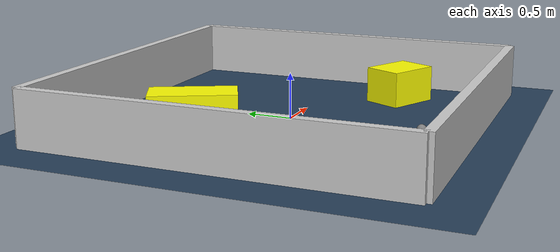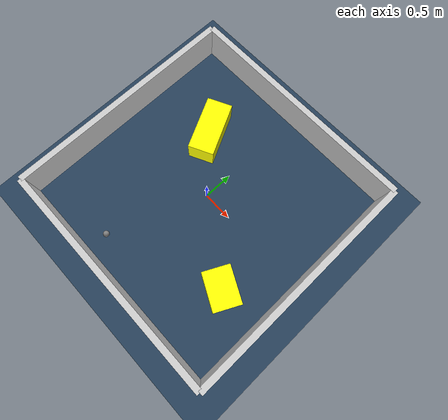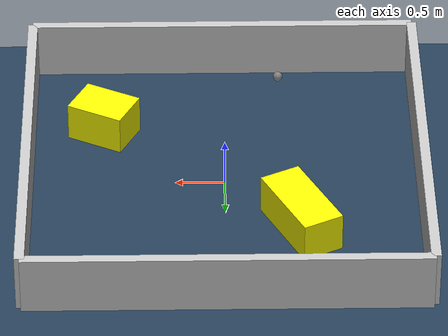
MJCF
<?xml version="1.0" ?>
<mujoco model="generated_environment">
  <option timestep="0.01" integrator="RK4" cone="elliptic"/>
  <default>
    <geom density="1"/>
  </default>
  <asset>
    <texture builtin="gradient" height="3072" rgb1="0.3 0.5 0.7" rgb2="0 0 0" type="skybox" width="512"/>
    <texture builtin="checker" height="300" mark="edge" markrgb="0.8 0.8 0.8" name="groundplane" rgb1="0.2 0.3 0.4" rgb2="0.1 0.2 0.3" type="2d" width="300"/>
    <material name="groundplane" reflectance="0.2" texrepeat="5 5" texture="groundplane" texuniform="true"/>
    <material name="robot" rgba="0.0 1.0 0.0 1"/>
  </asset>
  <worldbody>
    <light dir="0 0 -1" directional="true" pos="0 0 1.5"/>
    <geom condim="4" friction="1.0 0.005 0.001" material="groundplane" name="floor" size="0 0 0.05" type="plane"/>
    <body name="walls">
      <geom name="wall_1" condim="4" pos="-2.0 0.0 0.3" rgba="0.800000011920929 0.800000011920929 0.800000011920929 1.0" size="0.05 2.0 0.3" type="box"/>
      <geom name="wall_2" condim="4" pos="2.0 0.0 0.3" rgba="0.800000011920929 0.800000011920929 0.800000011920929 1.0" size="0.05 2.0 0.3" type="box"/>
      <geom name="wall_3" condim="4" pos="0.0 -2.0 0.3" rgba="0.800000011920929 0.800000011920929 0.800000011920929 1.0" size="2.0 0.05 0.3" type="box"/>
      <geom name="wall_4" condim="4" pos="0.0 2.0 0.3" rgba="0.800000011920929 0.800000011920929 0.800000011920929 1.0" size="2.0 0.05 0.3" type="box"/>
    </body>
    <body name="robot">
      <joint name="joint_x" type="slide" pos="0 0 0" axis="1 0 0"/>
      <joint name="joint_y" type="slide" pos="0 0 0" axis="0 1 0"/>
      <geom name="robot" type="sphere" pos="-0.5787288516784841 -1.595001809407763 0.2" size="0.05" mass="5." friction="1.0 0.005 0.0001" condim="4"/>
      <site name="sensor_ball"/>
    </body>
    <body name="obstacle_1_movable">
      <geom name="obstacle_1_movable" condim="4" pos="1.2392498301467878 -0.8690162568112964 0.2" euler="0 0 63.2412055764961" friction="1.0 0.005 0.001" rgba="1 1 0 1" size="0.22491532745422657 0.3019391297536757 0.2" type="box" mass="0.1"/>
      <joint type="free"/>
    </body>
    <body name="obstacle_2_movable">
      <geom name="obstacle_2_movable" condim="4" pos="-0.7495351178850949 0.7817968149373264 0.2" euler="0 0 206.53861499232954" friction="1.0 0.005 0.001" rgba="1 1 0 1" size="0.21393684442282865 0.46397350670278537 0.2" type="box" mass="0.1"/>
      <joint type="free"/>
    </body>
  </worldbody>
  <actuator>
    <motor name="actuator_x" joint="joint_x" gear="1" ctrlrange="-1 1"/>
    <motor name="actuator_y" joint="joint_y" gear="1" ctrlrange="-1 1"/>
  </actuator>
</mujoco>
